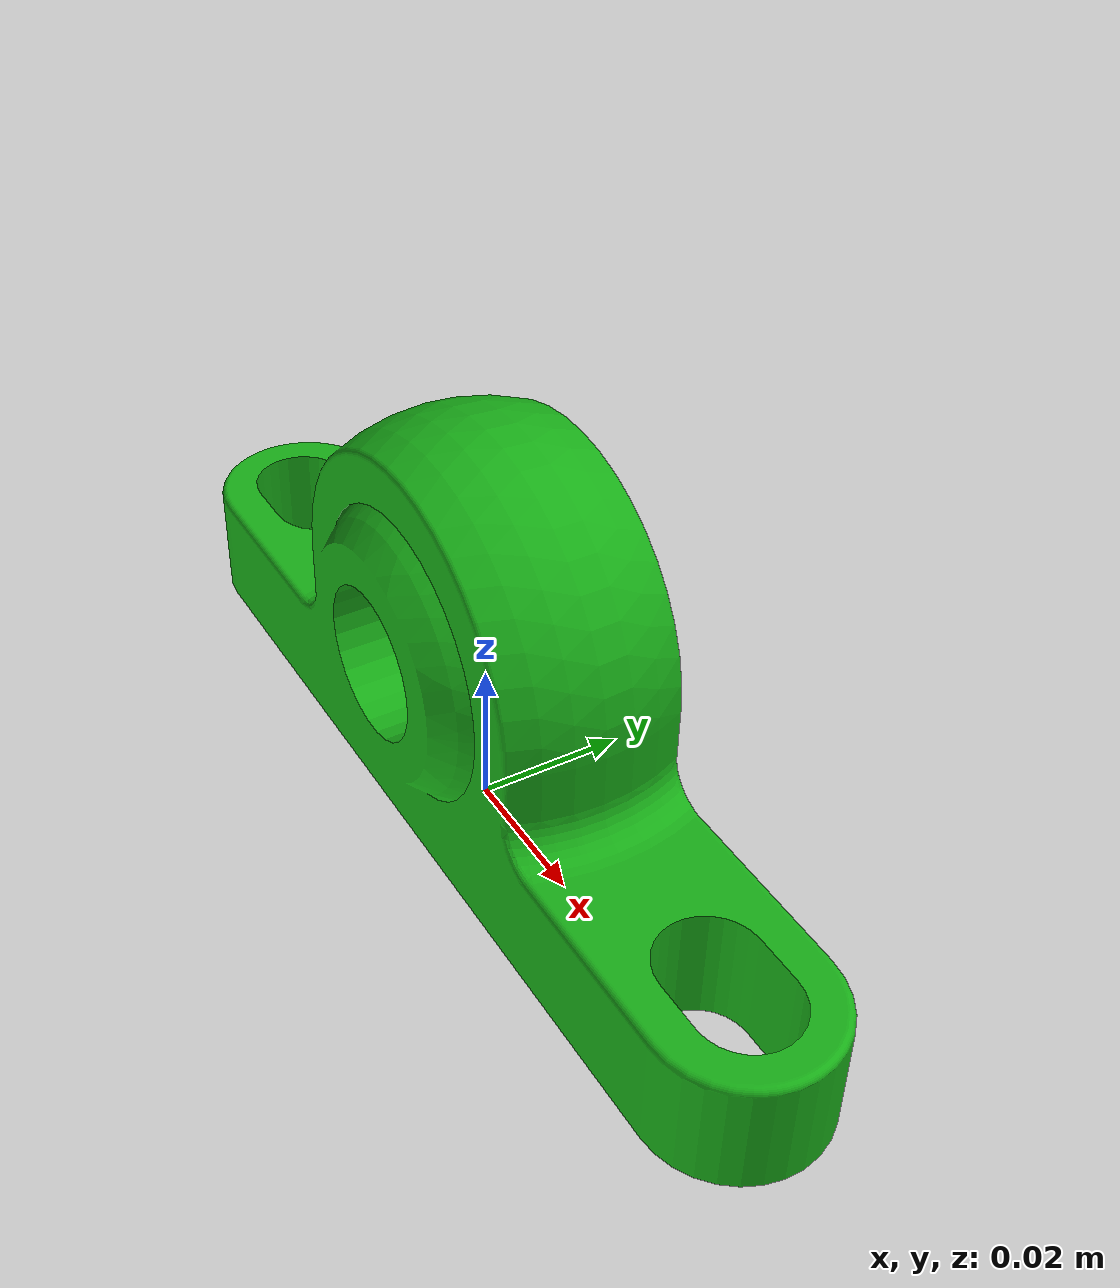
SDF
<?xml version="1.0" ?>
<sdf version="1.0">
  <model name="3d_housing">
    <link name="link">
      <inertial>
        <pose>-0.000000420 -0.000000049 0.020225052 0 0 0</pose>
        <mass>1.2</mass>
        <inertia>
          <ixx>0.00034503813323916</ixx>
          <ixy>0.00000000276837844530462</ixy>
          <ixz>0.00000000271884924518136</ixz>
          <iyy>0.00115326603947388</iyy>
          <iyz>0.00000000464858431370717</iyz>
          <izz>0.00094516515697669</izz>
        </inertia>
      </inertial>
      <collision name="collision">
        <pose>0 0 0 0 0 0</pose>
        <geometry>
          <mesh>
            <uri>model://3d_housing/housing_001.stl</uri>
          </mesh>
        </geometry>
        <surface>
          <friction>
            <ode>
              <mu>100000.0</mu>
              <mu2>100000.0</mu2>
            </ode>
          </friction>
          <contact>
            <ode>
              <kp>1000000.0</kp>
              <kd>1000000.0</kd>
              <min_depth>0.001</min_depth>
              <max_vel>0</max_vel>
            </ode>
          </contact>
        </surface>
      </collision>
      <visual name="visual">
        <pose>0 0 0 0 0 0</pose>
        <geometry>
          <mesh>
            <uri>model://3d_housing/housing_001.stl</uri>
          </mesh>
        </geometry>
<material>
          <ambient>0.1 0.7 0.1 1</ambient>
          <diffuse>0.1 0.7 0.1 1</diffuse>
          <specular>0.01 0.01 0.01 1</specular>
          <emissive>0 0 0 1</emissive>
          <shader type='vertex'>
            <normal_map>__default__</normal_map>
          </shader>
        </material>
        <cast_shadows>1</cast_shadows>
        <transparency>0</transparency>
      </visual>
    </link>
<static>0</static>
    <allow_auto_disable>1</allow_auto_disable>
  </model>
</sdf>
